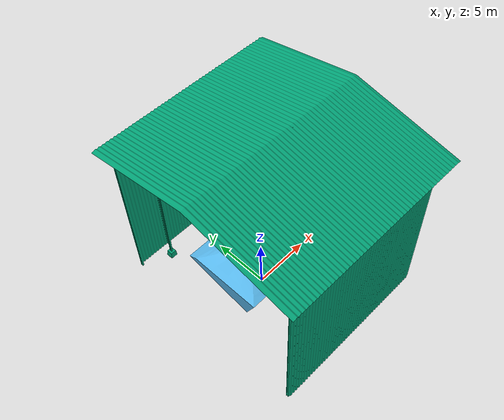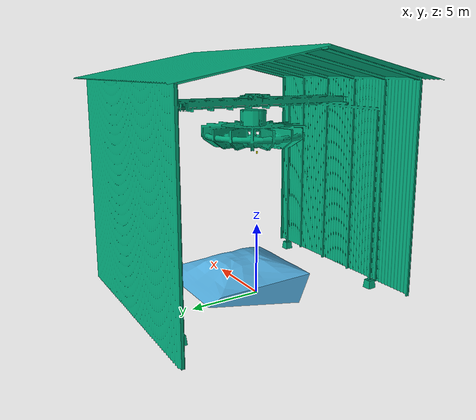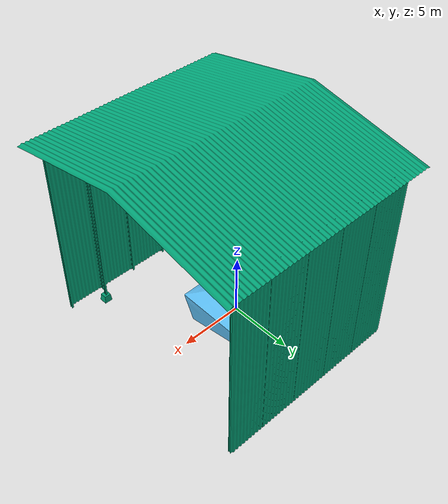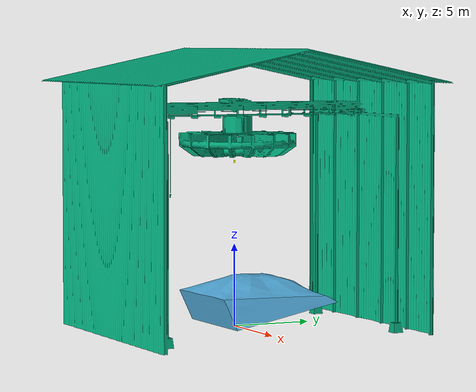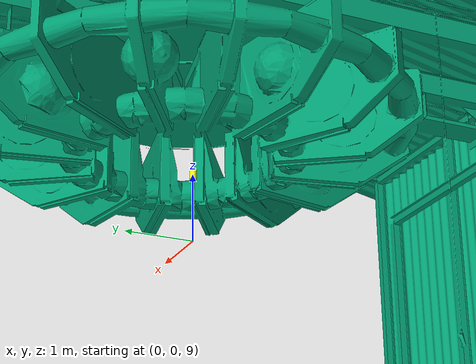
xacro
<?xml version="1.0"?>
<robot name="mp_700" xmlns:xacro="http://ros.org/wiki/xacro">

<!--========================================== Constants ============================================-->

    <xacro:property name="M_PI"   value="3.14159265359" />

<!--========================================== Materials ============================================-->

<material name="Neobotix/Black">
    <color rgba="0.0 0.0 0.0 1.0"/>
</material>

<material name="Neobotix/Blue">
    <color rgba="0.0 0.0 0.8 1.0"/>
</material>

<material name="Neobotix/Green">
    <color rgba="0.0 0.8 0.0 1.0"/>
</material>

<material name="Neobotix/Grey">
    <color rgba="0.7 0.7 0.7 1.0"/>
</material>

<material name="Neobotix/Grey2">
    <color rgba="0.9 0.9 0.9 1.0"/>
</material>

<material name="Neobotix/Red">
    <color rgba="0.8 0.0 0.0 1.0"/>
</material>

<material name="Neobotix/White">
    <color rgba="1.0 1.0 1.0 1.0"/>
</material>

<material name="Neobotix/Yellow">
    <color rgba="1.0 1.0 0 1"/>
</material>

<material name="Neobotix/Aluminum">
    <color rgba="0.5 0.5 0.5 1"/>
</material>

<!--==================================== Gazebo Link References =====================================-->

<gazebo reference="base_link">
    <gravity>true</gravity>
    <self_collide>false</self_collide>
    <material value="Gazebo/Grey"/>
</gazebo>

<gazebo reference="base_footprint">
    <gravity>true</gravity>
    <self_collide>false</self_collide>
    <material value="Gazebo/Grey"/>
</gazebo>

<!--========================================= Base Macro ============================================-->

<!--The root link base_link has an inertia specified in the URDF,
    but KDL does not support a root link with an inertia. As a
    workaround, you can add an extra base_footprint link to your URDF. -->
<link name="base_footprint"/>

<link name="base_link">
    <visual>
        <geometry>
            <mesh filename="package://working/models/Truck/140tonnes_med_poly.stl"/>
        </geometry>
        <origin xyz="0 0 0" rpy="0 0 0" />
    </visual>
    <collision>
        <geometry>
            <mesh filename="package://working/models/Truck/140tonnes_med_poly.stl"/>
        </geometry>
        <origin xyz="0 0 0" rpy="0 0 0" />
    </collision>
    <inertial>
        <mass value="50" />
        <origin xyz="0 0 0" rpy="0 0 0"/>
        <inertia ixx="4" ixy="0.00" ixz="0.00"
                 iyx="0.00" iyy="8" iyz="0.00"
                 izx="0.00" izy="0.00" izz="5"/>
    </inertial>
    <static> true </static>
</link>

<joint name="base_footprint_joint" type="fixed">
   <parent link="base_footprint"/>
   <child  link="base_link"/>
   <origin xyz="0 0 0" rpy="0 0 0"/>
</joint>

<link name="shed">
    <visual>
        <geometry>
            <mesh filename="package://working/models/Shed/shed_with_crane_simplified.stl"/>
        </geometry>
        <origin xyz="0 0 0" rpy="0 0 0" />
    </visual>
        <collision>
        <geometry>
            <mesh filename="package://working/models/Shed/shed_with_crane_simplified.stl"/>
        </geometry>
        <origin xyz="0 0 0" rpy="0 0 0" />
    </collision>
    <inertial>
        <mass value="1000" />
        <origin xyz="0 0 0" rpy="0 0 0"/>
        <inertia ixx="48167" ixy="0.00" ixz="0.00"
                 iyx="0.00" iyy="48167" iyz="0.00"
                 izx="0.00" izy="0.00" izz="48167"/>
    </inertial>
    <static> true </static>
</link>

<joint name="shed_joint" type="fixed">
   <parent link="base_footprint"/>
   <child  link="shed"/>
   <origin xyz="0 0 0" rpy="0 0 0"/>
</joint>

<!--================================ Gazebo Sick Laser References ===================================-->

<link name="lidar_footprint">
    <visual>
        <geometry>
            <box size="0.01 0.01 0.01"/>
        </geometry>
        <origin xyz="0 0 0" rpy="0 0 0" />
    </visual>
    <collision>
        <geometry>
            <box size="0.01 0.01 0.01"/>
        </geometry>
        <origin xyz="0 0 0" rpy="0 0 0" />
    </collision>
    <inertial>
        <mass value="1" />
        <origin xyz="0 0 0" rpy="0 0 0"/>
        <inertia ixx="4" ixy="0.00" ixz="0.00"
                 iyx="0.00" iyy="8" iyz="0.00"
                 izx="0.00" izy="0.00" izz="5"/>
    </inertial>
    <static> true </static>
</link>

<joint name="lidar_footprint_joint" type="fixed">
   <parent link="base_footprint"/>
   <child  link="lidar_footprint"/>
   <origin xyz="0 0 10" rpy="0 ${-M_PI} 0"/>
</joint>

<gazebo reference="3d_lidar">
    <material value="Gazebo/Yellow"/>
    <gravity>false</gravity>
    <sensor name="3d_lidar_sensor" type="ray">
        <pose>0 0 0 0 0 0</pose>
        <visualize>true</visualize>
        <update_rate>10</update_rate>
        <ray>
            <scan>
                <horizontal>
                    <samples>140</samples>
                    <resolution>1</resolution>
                    <min_angle>-${M_PI}</min_angle>
                    <max_angle>${M_PI}</max_angle>
                </horizontal>
                <vertical>
                    <samples>140</samples>
                    <resolution>1</resolution>
                    <min_angle>${M_PI/2-M_PI/180*19.2}</min_angle>
                    <max_angle>${M_PI/2}</max_angle>
                </vertical>
            </scan>
            <range>
                <min>0.10</min>
                <max>30.0</max>
                <resolution>0.01</resolution>
            </range>
            <noise>
                <type>gaussian</type>
                <mean>0.0</mean>
                <stddev>0.01</stddev>
            </noise>
        </ray>
        <plugin name="gazebo_ros_laser_controller" filename="libgazebo_ros_velodyne_laser.so">
            <topicName>lidar3D/scan</topicName>
            <frameName>3d_lidar</frameName>
            <organize_cloud>false</organize_cloud>
            <min_range>0.10</min_range>
            <max_range>30.0</max_range>
            <gaussianNoise>0.008</gaussianNoise>
          </plugin>
    </sensor>
</gazebo>

<link name="3d_lidar" type="laser">
    <inertial>
        <mass value="1"/>
        <origin rpy="0 0 0" xyz="0 0 0"/>
        <inertia ixx="4" ixy="0.00" ixz="0.00"
                 iyx="0.00" iyy="8" iyz="0.00"
                 izx="0.00" izy="0.00" izz="5"/>
    </inertial>
    <visual>
        <origin rpy="0 0 0" xyz="0 0 0"/>
        <geometry>
            <cylinder length="0.154" radius="0.05"/>
        </geometry>
        <material name="Neobotix/Yellow"/>
    </visual>
    <collision>
        <origin rpy="0 0 0" xyz="-0.05 0 0"/>
        <geometry>
            <cylinder length="0.15" radius="0.05"/>
        </geometry>
    </collision>
</link>

<!-- 6DOF joints and links -->
<!-- Prismatic joints -->
<!--on x axis-->

<joint name="lidar_1_pris1_joint" type="prismatic">
    <axis xyz="1 0 0"/>
    <origin rpy="0 0 0" xyz="0 0 0"/>
    <parent link="lidar_footprint"/>
    <child link="lidar_1_link_1"/>
    <dynamics damping="10.0" friction="5.0"/>
    <limit effort="1000" velocity="3" lower="-20" upper="20" />
</joint>

<link name="lidar_1_link_1">
    <inertial>
        <mass value="1"/>
        <origin rpy="0 0 0" xyz="0 0 0"/>
        <inertia ixx="1.0" ixy="0" ixz="0" iyy="1.0" iyz="0" izz="1.0"/>
    </inertial>
    <visual>
        <origin rpy="0 0 0" xyz="0 0 0"/>
        <geometry>
            <box size="0.01 0.01 0.01" />
        </geometry>
        <material name="Neobotix/Black"/>
    </visual>
    <collision>
        <origin rpy="0 0 0" xyz="0 0 0"/>
        <geometry>
            <box size="0.001 0.001 0.001" />
        </geometry>
    </collision>
</link>

<!--on y axis-->

<joint name="lidar_1_pris2_joint" type="prismatic">
    <axis xyz="0 1 0"/>
    <origin rpy="0 0 0" xyz="0 0 0"/>
    <parent link="lidar_1_link_1"/>
    <child link="lidar_1_link_2"/>
    <dynamics damping="10.0" friction="5.0"/>
    <limit effort="1000" velocity="3" lower="-20" upper="20" />
</joint>

<link name="lidar_1_link_2">
    <inertial>
        <mass value="1"/>
        <origin rpy="0 0 0" xyz="0 0 0"/>
        <inertia ixx="1.0" ixy="0" ixz="0" iyy="1.0" iyz="0" izz="1.0"/>
    </inertial>
    <visual>
        <origin rpy="0 0 0" xyz="0 0 0"/>
        <geometry>
            <box size="0.01 0.01 0.01" />
        </geometry>
        <material name="Neobotix/Black"/>
    </visual>
    <collision>
        <origin rpy="0 0 0" xyz="0 0 0"/>
        <geometry>
            <box size="0.001 0.001 0.001" />
        </geometry>
    </collision>
</link>

<!--on z axis-->

<joint name="lidar_1_pris3_joint" type="prismatic">
    <axis xyz="0 0 1"/>
    <origin rpy="0 0 0" xyz="0 0 0"/>
    <parent link="lidar_1_link_2"/>
    <child link="lidar_1_link_3"/>
    <dynamics damping="10.0" friction="5.0"/>
    <limit effort="1000" velocity="3" lower="-20" upper="20" />
</joint>

<link name="lidar_1_link_3">
    <inertial>
        <mass value="1"/>
        <origin rpy="0 0 0" xyz="0 0 0"/>
        <inertia ixx="1.0" ixy="0" ixz="0" iyy="1.0" iyz="0" izz="1.0"/>
    </inertial>
    <visual>
        <origin rpy="0 0 0" xyz="0 0 0"/>
        <geometry>
            <box size="0.01 0.01 0.01" />
        </geometry>
        <material name="Neobotix/Black"/>
    </visual>
    <collision>
        <origin rpy="0 0 0" xyz="0 0 0"/>
        <geometry>
            <box size="0.001 0.001 0.001" />
        </geometry>
    </collision>
</link>

<!-- Revolute joints -->
<!--around x axis-->

<joint name="lidar_1_rev1_joint" type="revolute">
    <axis xyz="1 0 0"/>
    <origin rpy="0 0 0" xyz="0 0 0"/>
    <parent link="lidar_1_link_3"/>
    <child link="lidar_1_link_4"/>
    <dynamics damping="10.0" friction="5.0"/>
    <limit effort="1000" velocity="3" lower="-${M_PI}" upper="${M_PI}" />
</joint>

<link name="lidar_1_link_4">
    <inertial>
        <mass value="1"/>
        <origin rpy="0 0 0" xyz="0 0 0"/>
        <inertia ixx="1.0" ixy="0" ixz="0" iyy="1.0" iyz="0" izz="1.0"/>
    </inertial>
    <visual>
        <origin rpy="0 0 0" xyz="0 0 0"/>
        <geometry>
            <box size="0.01 0.01 0.01" />
        </geometry>
        <material name="Neobotix/Black"/>
    </visual>
    <collision>
        <origin rpy="0 0 0" xyz="0 0 0"/>
        <geometry>
            <box size="0.001 0.001 0.001" />
        </geometry>
    </collision>
</link>

<!--around y axis-->

<joint name="lidar_1_rev2_joint" type="revolute">
    <axis xyz="0 1 0"/>
    <origin rpy="0 0 0" xyz="0 0 0"/>
    <parent link="lidar_1_link_4"/>
    <child link="lidar_1_link_5"/>
    <dynamics damping="10.0" friction="5.0"/>
    <limit effort="1000" velocity="3" lower="-${M_PI}" upper="${M_PI}" />
</joint>

<link name="lidar_1_link_5">
    <inertial>
        <mass value="1"/>
        <origin rpy="0 0 0" xyz="0 0 0"/>
        <inertia ixx="1.0" ixy="0" ixz="0" iyy="1.0" iyz="0" izz="1.0"/>
    </inertial>
    <visual>
        <origin rpy="0 0 0" xyz="0 0 0"/>
        <geometry>
            <box size="0.01 0.01 0.01" />
        </geometry>
        <material name="Neobotix/Black"/>
    </visual>
    <collision>
        <origin rpy="0 0 0" xyz="0 0 0"/>
        <geometry>
            <box size="0.001 0.001 0.001" />
        </geometry>
    </collision>
</link>

<!--around z axis-->
<!--end-effector-->

<joint name="lidar_1_rev3_joint" type="revolute">
    <axis xyz="0 0 1"/>
    <origin rpy="0 0 0" xyz="0 0 0"/>
    <parent link="lidar_1_link_5"/>
    <child link="3d_lidar"/>
    <dynamics damping="10.0" friction="5.0"/>
    <limit effort="1000" velocity="3" lower="-${M_PI}" upper="${M_PI}" />
</joint>

<!--plugin-->
<gazebo>
    <plugin name="gazebo_ros_control" filename="libgazebo_ros_control.so">
      <robotNamespace>/lidar3D</robotNamespace>
    </plugin>
</gazebo>

<!--lidar1-->
<transmission name="lidar_1_tran_1">
    <type>transmission_interface/SimpleTransmission</type>
    <joint name="lidar_1_pris1_joint">
        <hardwareInterface>hardware_interface/EffortJointInterface</hardwareInterface>
    </joint>
    <actuator name="lidar_1_pris1_motor">
        <hardwareInterface>hardware_interface/EffortJointInterface</hardwareInterface>
        <mechanicalReduction>1</mechanicalReduction>
    </actuator>
</transmission>

<transmission name="lidar_1_tran_2">
    <type>transmission_interface/SimpleTransmission</type>
    <joint name="lidar_1_pris2_joint">
        <hardwareInterface>hardware_interface/EffortJointInterface</hardwareInterface>
    </joint>
    <actuator name="lidar_1_pris2_motor">
        <hardwareInterface>hardware_interface/EffortJointInterface</hardwareInterface>
        <mechanicalReduction>1</mechanicalReduction>
    </actuator>
</transmission>

<transmission name="lidar_1_tran_3">
    <type>transmission_interface/SimpleTransmission</type>
    <joint name="lidar_1_pris3_joint">
        <hardwareInterface>hardware_interface/EffortJointInterface</hardwareInterface>
    </joint>
    <actuator name="lidar_1_pris3_motor">
        <hardwareInterface>hardware_interface/EffortJointInterface</hardwareInterface>
        <mechanicalReduction>1</mechanicalReduction>
    </actuator>
</transmission>

<transmission name="lidar_1_tran_4">
    <type>transmission_interface/SimpleTransmission</type>
    <joint name="lidar_1_rev1_joint">
        <hardwareInterface>hardware_interface/EffortJointInterface</hardwareInterface>
    </joint>
    <actuator name="lidar_1_rev1_motor">
        <hardwareInterface>hardware_interface/EffortJointInterface</hardwareInterface>
        <mechanicalReduction>1</mechanicalReduction>
    </actuator>
</transmission>

<transmission name="lidar_1_tran_5">
    <type>transmission_interface/SimpleTransmission</type>
    <joint name="lidar_1_rev2_joint">
        <hardwareInterface>hardware_interface/EffortJointInterface</hardwareInterface>
    </joint>
    <actuator name="lidar_1_rev2_motor">
        <hardwareInterface>hardware_interface/EffortJointInterface</hardwareInterface>
        <mechanicalReduction>1</mechanicalReduction>
    </actuator>
</transmission>

<transmission name="lidar_1_tran_6">
    <type>transmission_interface/SimpleTransmission</type>
    <joint name="lidar_1_rev3_joint">
      <hardwareInterface>hardware_interface/EffortJointInterface</hardwareInterface>
    </joint>
    <actuator name="lidar_1_rev3_motor">
      <hardwareInterface>hardware_interface/EffortJointInterface</hardwareInterface>
      <mechanicalReduction>1</mechanicalReduction>
    </actuator>
</transmission>

</robot>
